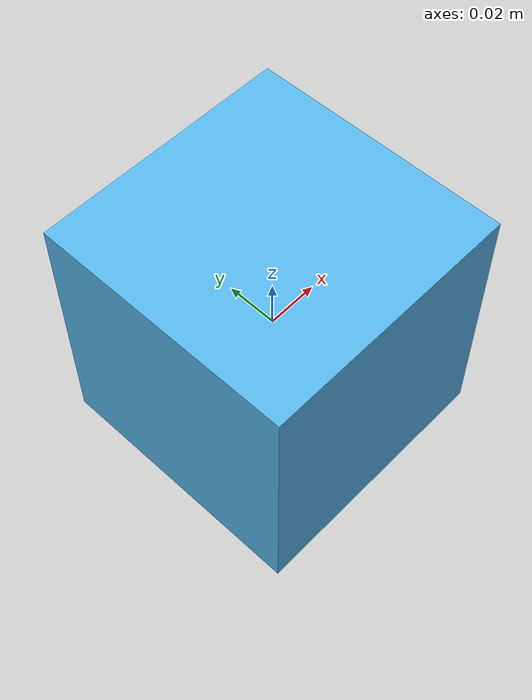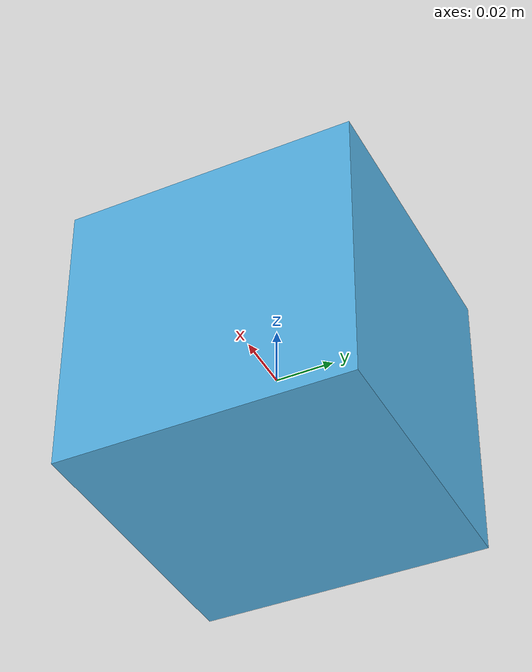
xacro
<?xml version="1.0"?>
<robot xmlns:xacro="http://www.ros.org/wiki/xacro" name="isaac_twin">
    <xacro:arg name="initial_positions_file" default="initial_positions.yaml" />

    <!-- Import isaac_twin urdf file -->
    <xacro:include filename="$(find isaac_sim_demo)/urdf/two_drones.urdf" />

    <!-- Import control_xacro -->
    <xacro:include filename="isaac_twin.ros2_control.xacro" />

    <xacro:isaac_twin_ros2_control name="FakeSystem" initial_positions_file="$(arg initial_positions_file)"/>

</robot>

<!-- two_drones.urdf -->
<!-- |    This document was autogenerated by xacro from two_drones.xacro               | -->
<!-- |    EDITING THIS FILE BY HAND IS NOT RECOMMENDED                                 | -->
<robot name="isaac_twin">
  <link name="base_link">
    <visual>
      <geometry>
        <box size="0.1 0.1 0"/>
      </geometry>
    </visual>
    <collision>
      <geometry>
        <box size="0.1 0.1 0"/>
      </geometry>
    </collision>
  </link>

  <joint name="floating_1" type="floating">
    <parent link="base_link"/>
    <child link="Drone1"/>
    <origin rpy="0 0 0" xyz="0 0 0.0"/>
    <axis xyz="1 0 0"/>
  </joint>

  <link name="Drone1">
    <inertial>
      <mass value="0.1"/>
      <origin rpy="0 0 0" xyz="0 0 0"/>
      <inertia ixx="0.0001666666666666667" ixy="0" ixz="0" iyy="0.0001666666666666667" iyz="0" izz="0.0001666666666666667"/>
    </inertial>
    <collision>
      <origin rpy="0 0 0" xyz="0 0 0"/>
      <geometry>
        <box size="0.1 0.1 0.1"/>
      </geometry>
    </collision>
    <visual>
      <origin rpy="0 0 0" xyz="0 0 0"/>
      <geometry>
        <box size="0.1 0.1 0.1"/>
      </geometry>
    </visual>
  </link>

  <joint name="floating_2" type="floating">
    <parent link="Drone1"/>
    <child link="Drone2"/>
    <origin rpy="0 0 0" xyz="0 0 0.0"/>
    <axis xyz="1 0 0"/>
  </joint>

  <link name="Drone2">
    <inertial>
      <mass value="0.1"/>
      <origin rpy="0 0 0" xyz="0 0 0"/>
      <inertia ixx="0.0001666666666666667" ixy="0" ixz="0" iyy="0.0001666666666666667" iyz="0" izz="0.0001666666666666667"/>
    </inertial>
    <collision>
      <origin rpy="0 0 0" xyz="0 0 0"/>
      <geometry>
        <box size="0.1 0.1 0.1"/>
      </geometry>
    </collision>
    <visual>
      <origin rpy="0 0 0" xyz="0 0 0"/>
      <geometry>
        <box size="0.1 0.1 0.1"/>
      </geometry>
    </visual>
  </link>
</robot>
